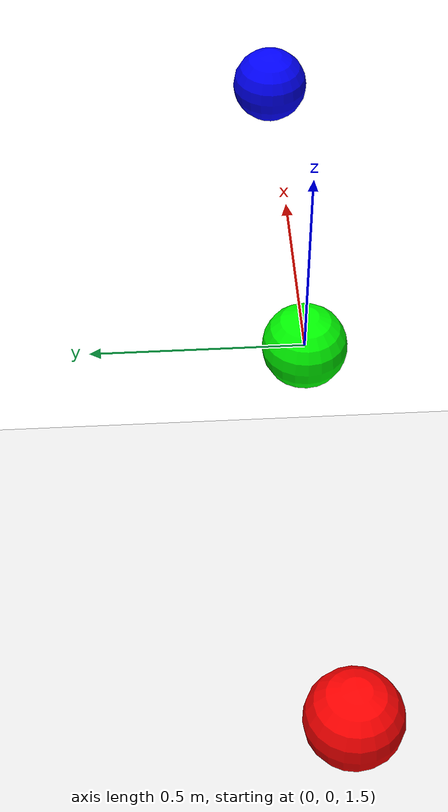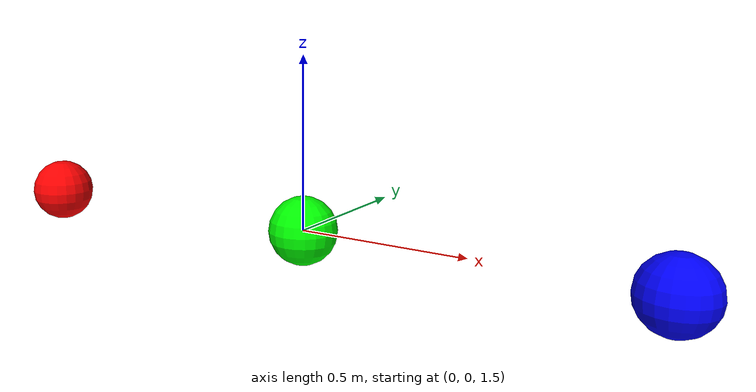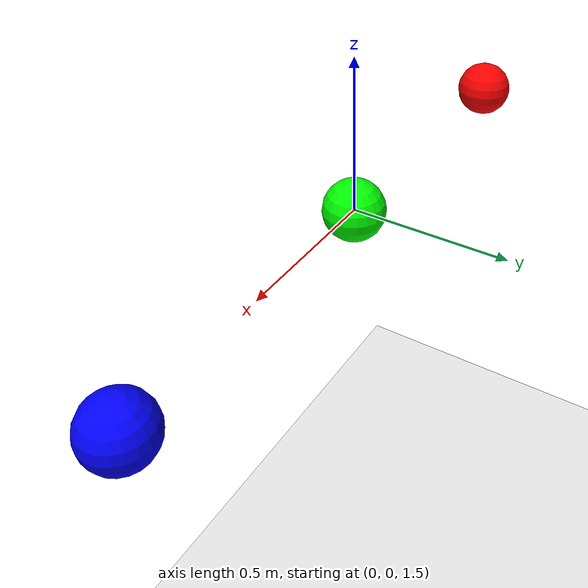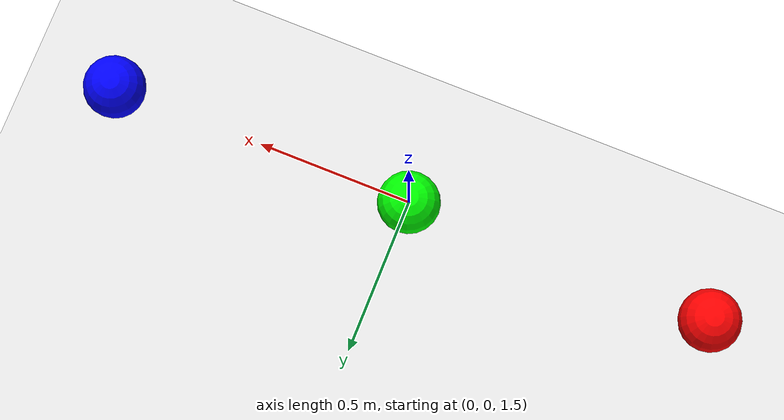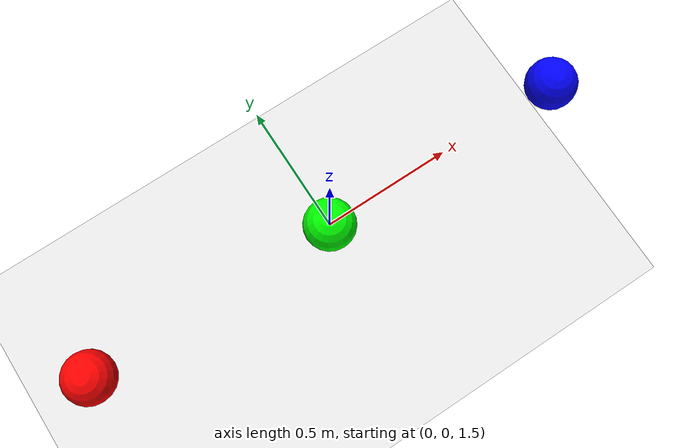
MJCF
<mujoco>
  <option gravity="0 0 -9.81"/>
  <worldbody>
    <body name="ground" pos="0 0 -1">
      <geom type="plane" size="30 30 0.1" rgba="0.9 0.9 0.9 1"/>
    </body>
    <body name="anchor" pos="0 0 2"/>
    <body name="spring_mass_1" pos="-1 0 1.5">
      <geom type="sphere" size="0.1" mass="1" rgba="1 0 0 1"/>
      <joint type="slide" axis="0 0 1"/>
    </body>
    <body name="spring_mass_2" pos="0 0 1.5">
      <geom type="sphere" size="0.1" mass="1" rgba="0 1 0 1"/>
      <joint type="slide" axis="0 0 1"/>
    </body>
    <body name="spring_mass_3" pos="1 0 1.5">
      <geom type="sphere" size="0.1" mass="1.5" rgba="0 0 1 1"/>
      <joint type="slide" axis="0 0 1"/>
    </body>
  </worldbody>
  <tendon>
    <spatial name="spring1" width="0.01" stiffness="20" damping="0.5">
      <site site="anchor"/>
      <site site="spring_mass_1"/>
    </spatial>
    <spatial name="spring2" width="0.01" stiffness="20" damping="1.0">
      <site site="anchor"/>
      <site site="spring_mass_2"/>
    </spatial>
    <spatial name="spring3" width="0.01" stiffness="20" damping="2.0">
      <site site="anchor"/>
      <site site="spring_mass_3"/>
    </spatial>
  </tendon>
</mujoco>
